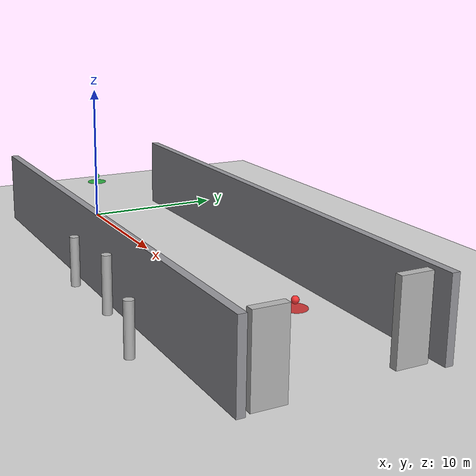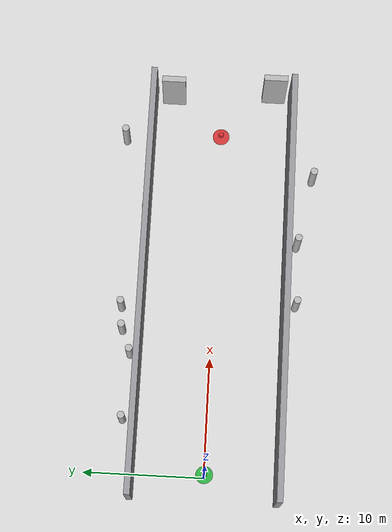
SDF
<sdf version="1.10">
 <world name="obstacle_avoidance">
  <physics type="ode">
   <max_step_size>0.0040000000000000001</max_step_size>
   <real_time_factor>1</real_time_factor>
   <real_time_update_rate>250</real_time_update_rate>
  </physics>
  <plugin name="gz::sim::systems::Physics" filename="gz-sim-physics-system"/>
  <plugin name="gz::sim::systems::UserCommands" filename="gz-sim-user-commands-system"/>
  <plugin name="gz::sim::systems::SceneBroadcaster" filename="gz-sim-scene-broadcaster-system"/>
  <plugin name="gz::sim::systems::Contact" filename="gz-sim-contact-system"/>
  <plugin name="gz::sim::systems::Imu" filename="gz-sim-imu-system"/>
  <plugin name="gz::sim::systems::AirPressure" filename="gz-sim-air-pressure-system"/>
  <plugin name="gz::sim::systems::AirSpeed" filename="gz-sim-air-speed-system"/>
  <plugin name="gz::sim::systems::ApplyLinkWrench" filename="gz-sim-apply-link-wrench-system"/>
  <plugin name="gz::sim::systems::NavSat" filename="gz-sim-navsat-system"/>
  <plugin name="gz::sim::systems::Magnetometer" filename="gz-sim-magnetometer-system"/>
  <plugin name="gz::sim::systems::Sensors" filename="gz-sim-sensors-system">
   <render_engine>ogre2</render_engine>
  </plugin>
  <plugin name="custom::OpticalFlowSystem" filename="libOpticalFlowSystem.so"/>
  <plugin name="custom::GstCameraSystem" filename="libGstCameraSystem.so"/>
  <gravity>0 0 -9.8000000000000007</gravity>
  <magnetic_field>6.0000000000000002e-06 2.3e-05 -4.1999999999999998e-05</magnetic_field>
  <atmosphere type="adiabatic"/>
  <scene>
   <grid>true</grid>
   <ambient>0.449999988 0.449999988 0.449999988 1</ambient>
   <background>0.74000001 0.769999981 0.819999993 1</background>
   <shadows>true</shadows>
  </scene>
  <spherical_coordinates>
   <surface_model>EARTH_WGS84</surface_model>
   <world_frame_orientation>ENU</world_frame_orientation>
   <latitude_deg>47.397971057728974</latitude_deg>
   <longitude_deg>8.5461637398001464</longitude_deg>
   <elevation>0</elevation>
   <heading_deg>0</heading_deg>
  </spherical_coordinates>
  <model name="ground_plane">
   <static>true</static>
   <link name="link">
    <collision name="collision">
     <geometry><plane><normal>0 0 1</normal><size>1 1</size></plane></geometry>
    </collision>
    <visual name="visual">
     <geometry><plane><normal>0 0 1</normal><size>120 120</size></plane></geometry>
     <material>
      <ambient>0.850000024 0.850000024 0.850000024 1</ambient>
      <diffuse>0.850000024 0.850000024 0.850000024 1</diffuse>
      <specular>0.400000006 0.400000006 0.400000006 1</specular>
     </material>
    </visual>
    <inertial>
     <mass>1</mass>
     <inertia><ixx>1</ixx><ixy>0</ixy><ixz>0</ixz><iyy>1</iyy><iyz>0</iyz><izz>1</izz></inertia>
    </inertial>
   </link>
  </model>
  <model name="lane_left_wall">
   <static>false</static>
   <pose>16.000350685277397 5.9726479455530503 2.5000071550429319 0.00013159811792528642 1.6293659742325944e-09 -0.0014502391489560568</pose>
   <link name="link">
    <collision name="collision"><geometry><box><size>36 0.5 5</size></box></geometry></collision>
    <visual name="visual">
     <geometry><box><size>36 0.5 5</size></box></geometry>
     <material>
      <ambient>0.5 0.5 0.519999981 1</ambient>
      <diffuse>0.600000024 0.600000024 0.620000005 1</diffuse>
     </material>
    </visual>
    <inertial>
     <mass>1</mass>
     <inertia><ixx>1</ixx><ixy>0</ixy><ixz>0</ixz><iyy>1</iyy><iyz>0</iyz><izz>1</izz></inertia>
    </inertial>
   </link>
  </model>
  <model name="lane_right_wall">
   <static>false</static>
   <pose>16.000034893159931 -6.0027765016829369 2.4999872571535362 3.7656652722942262e-08 1.1025071628537408e-12 -0.00015395044681306788</pose>
   <link name="link">
    <collision name="collision"><geometry><box><size>36 0.5 5</size></box></geometry></collision>
    <visual name="visual">
     <geometry><box><size>36 0.5 5</size></box></geometry>
     <material>
      <ambient>0.5 0.5 0.519999981 1</ambient>
      <diffuse>0.600000024 0.600000024 0.620000005 1</diffuse>
     </material>
    </visual>
    <inertial>
     <mass>1</mass>
     <inertia><ixx>1</ixx><ixy>0</ixy><ixz>0</ixz><iyy>1</iyy><iyz>0</iyz><izz>1</izz></inertia>
    </inertial>
   </link>
  </model>
  <model name="block_01">
   <static>false</static>
   <pose>4.4796299934387207 6.9769129753112793 1.5999992089195469 -3.4129033253894092e-17 2.0826223192293932e-16 1.7128980732863267e-18</pose>
   <link name="link">
    <collision name="collision">
     <geometry>
      <cylinder><radius>0.29999999999999999</radius><length>3.2000000000000002</length></cylinder>
     </geometry>
    </collision>
    <visual name="visual">
     <geometry>
      <cylinder><radius>0.29999999999999999</radius><length>3.2000000000000002</length></cylinder>
     </geometry>
    </visual>
    <inertial>
     <mass>1</mass>
     <inertia><ixx>1</ixx><ixy>0</ixy><ixz>0</ixz><iyy>1</iyy><iyz>0</iyz><izz>1</izz></inertia>
    </inertial>
   </link>
  </model>
  <model name="block_02">
   <static>false</static>
   <pose>10 6.691950798034668 1.5999992089195469 9.3753955047008215e-19 2.4068388300452732e-17 1.1006062327438353e-19</pose>
   <link name="link">
    <collision name="collision">
     <geometry>
      <cylinder><radius>0.29999999999999999</radius><length>3.2000000000000002</length></cylinder>
     </geometry>
    </collision>
    <visual name="visual">
     <geometry>
      <cylinder><radius>0.29999999999999999</radius><length>3.2000000000000002</length></cylinder>
     </geometry>
    </visual>
    <inertial>
     <mass>1</mass>
     <inertia><ixx>1</ixx><ixy>0</ixy><ixz>0</ixz><iyy>1</iyy><iyz>0</iyz><izz>1</izz></inertia>
    </inertial>
   </link>
  </model>
  <model name="block_03">
   <static>false</static>
   <pose>14 7.6509613990783691 1.5999992089195469 -5.7224000364468519e-18 6.9717609704587697e-16 2.1371617254475616e-18</pose>
   <link name="link">
    <collision name="collision">
     <geometry>
      <cylinder><radius>0.29999999999999999</radius><length>3.2000000000000002</length></cylinder>
     </geometry>
    </collision>
    <visual name="visual">
     <geometry>
      <cylinder><radius>0.29999999999999999</radius><length>3.2000000000000002</length></cylinder>
     </geometry>
    </visual>
    <inertial>
     <mass>1</mass>
     <inertia><ixx>1</ixx><ixy>0</ixy><ixz>0</ixz><iyy>1</iyy><iyz>0</iyz><izz>1</izz></inertia>
    </inertial>
   </link>
  </model>
  <model name="block_04">
   <static>false</static>
   <pose>14.750100135803223 -6.9767565727233887 1.5999992089195469 -1.986418425279222e-16 1.5427745075824404e-16 -2.2593311461309816e-19</pose>
   <link name="link">
    <collision name="collision">
     <geometry>
      <cylinder><radius>0.29999999999999999</radius><length>3.2000000000000002</length></cylinder>
     </geometry>
    </collision>
    <visual name="visual">
     <geometry>
      <cylinder><radius>0.29999999999999999</radius><length>3.2000000000000002</length></cylinder>
     </geometry>
    </visual>
    <inertial>
     <mass>1</mass>
     <inertia><ixx>1</ixx><ixy>0</ixy><ixz>0</ixz><iyy>1</iyy><iyz>0</iyz><izz>1</izz></inertia>
    </inertial>
   </link>
  </model>
  <model name="block_05">
   <static>false</static>
   <pose>22.237600930648853 6.0613506892762636 1.600000149859296 -6.52968830682026e-07 5.695882598897696e-10 1.6344363995861834e-06</pose>
   <link name="link">
    <collision name="collision">
     <geometry>
      <cylinder><radius>0.29999999999999999</radius><length>3.2000000000000002</length></cylinder>
     </geometry>
    </collision>
    <visual name="visual">
     <geometry>
      <cylinder><radius>0.29999999999999999</radius><length>3.2000000000000002</length></cylinder>
     </geometry>
    </visual>
    <inertial>
     <mass>1</mass>
     <inertia><ixx>1</ixx><ixy>0</ixy><ixz>0</ixz><iyy>1</iyy><iyz>0</iyz><izz>1</izz></inertia>
    </inertial>
   </link>
  </model>
  <model name="block_06">
   <static>false</static>
   <pose>26.024999618530273 -8.0206098556518555 1.5999998694917235 -9.531822592189839e-17 1.1494805065931402e-16 -1.9222684506365348e-18</pose>
   <link name="link">
    <collision name="collision">
     <geometry>
      <cylinder><radius>0.29999999999999999</radius><length>3.2000000000000002</length></cylinder>
     </geometry>
    </collision>
    <visual name="visual">
     <geometry>
      <cylinder><radius>0.29999999999999999</radius><length>3.2000000000000002</length></cylinder>
     </geometry>
    </visual>
    <inertial>
     <mass>1</mass>
     <inertia><ixx>1</ixx><ixy>0</ixy><ixz>0</ixz><iyy>1</iyy><iyz>0</iyz><izz>1</izz></inertia>
    </inertial>
   </link>
  </model>
  <model name="cyl_01">
   <static>false</static>
   <pose>12 7.4555902481079102 1.5999992089195469 1.7922751745646623e-17 2.1104140966654099e-18 -2.1862732116487971e-19</pose>
   <link name="link">
    <collision name="collision">
     <geometry>
      <cylinder><radius>0.29999999999999999</radius><length>3.2000000000000002</length></cylinder>
     </geometry>
    </collision>
    <visual name="visual">
     <geometry>
      <cylinder><radius>0.29999999999999999</radius><length>3.2000000000000002</length></cylinder>
     </geometry>
    </visual>
    <inertial>
     <mass>1</mass>
     <inertia><ixx>1</ixx><ixy>0</ixy><ixz>0</ixz><iyy>1</iyy><iyz>0</iyz><izz>1</izz></inertia>
    </inertial>
   </link>
  </model>
  <model name="cyl_02">
   <static>false</static>
   <pose>20 -6.8825201988220215 1.7999999525764545 -5.9956044407570622e-18 -7.2255734475861734e-18 9.0017156991867858e-20</pose>
   <link name="link">
    <collision name="collision">
     <geometry>
      <cylinder><radius>0.29999999999999999</radius><length>3.6000000000000001</length></cylinder>
     </geometry>
    </collision>
    <visual name="visual">
     <geometry>
      <cylinder><radius>0.29999999999999999</radius><length>3.6000000000000001</length></cylinder>
     </geometry>
    </visual>
    <inertial>
     <mass>1</mass>
     <inertia><ixx>1</ixx><ixy>0</ixy><ixz>0</ixz><iyy>1</iyy><iyz>0</iyz><izz>1</izz></inertia>
    </inertial>
   </link>
  </model>
  <model name="cyl_03">
   <static>false</static>
   <pose>29 8.1583166122436523 1.6999992089780487 -1.1693431182009026e-18 -3.9368016075562685e-18 1.8182324692950381e-19</pose>
   <link name="link">
    <collision name="collision">
     <geometry>
      <cylinder><radius>0.29999999999999999</radius><length>3.3999999999999999</length></cylinder>
     </geometry>
    </collision>
    <visual name="visual">
     <geometry>
      <cylinder><radius>0.29999999999999999</radius><length>3.3999999999999999</length></cylinder>
     </geometry>
    </visual>
    <inertial>
     <mass>1</mass>
     <inertia><ixx>1</ixx><ixy>0</ixy><ixz>0</ixz><iyy>1</iyy><iyz>0</iyz><izz>1</izz></inertia>
    </inertial>
   </link>
  </model>
  <model name="start_marker">
   <static>true</static>
   <pose>0.046363700181245804 0 2.7258865833282471 0 0 0</pose>
   <link name="link">
    <gravity>false</gravity>
    <kinematic>true</kinematic>
    <visual name="base_ring">
     <geometry>
      <cylinder><radius>0.69999999999999996</radius><length>0.040000000000000001</length></cylinder>
     </geometry>
     <material>
      <ambient>0.100000001 0.699999988 0.200000003 0.850000024</ambient>
      <diffuse>0.100000001 0.699999988 0.200000003 0.850000024</diffuse>
      <specular>0.200000003 0.200000003 0.200000003 1</specular>
     </material>
    </visual>
    <visual name="center_sphere">
     <pose>0 0 0.45000000000000001 0 0 0</pose>
     <geometry><sphere><radius>0.22</radius></sphere></geometry>
     <material>
      <ambient>0.100000001 0.850000024 0.25 1</ambient>
      <diffuse>0.100000001 0.850000024 0.25 1</diffuse>
      <specular>0.300000012 0.300000012 0.300000012 1</specular>
     </material>
    </visual>
    <inertial>
     <mass>1</mass>
     <inertia><ixx>1</ixx><ixy>0</ixy><ixz>0</ixz><iyy>1</iyy><iyz>0</iyz><izz>1</izz></inertia>
    </inertial>
   </link>
  </model>
  <model name="goal_marker">
   <static>true</static>
   <pose>28.969200134277344 0 2.378093957901001 0 0 0</pose>
   <link name="link">
    <gravity>false</gravity>
    <kinematic>true</kinematic>
    <visual name="base_ring">
     <geometry>
      <cylinder><radius>0.69999999999999996</radius><length>0.040000000000000001</length></cylinder>
     </geometry>
     <material>
      <ambient>0.850000024 0.150000006 0.150000006 0.850000024</ambient>
      <diffuse>0.850000024 0.150000006 0.150000006 0.850000024</diffuse>
      <specular>0.200000003 0.200000003 0.200000003 1</specular>
     </material>
    </visual>
    <visual name="center_sphere">
     <pose>0 0 0.45000000000000001 0 0 0</pose>
     <geometry><sphere><radius>0.22</radius></sphere></geometry>
     <material>
      <ambient>0.949999988 0.200000003 0.200000003 1</ambient>
      <diffuse>0.949999988 0.200000003 0.200000003 1</diffuse>
      <specular>0.300000012 0.300000012 0.300000012 1</specular>
     </material>
    </visual>
    <inertial>
     <mass>1</mass>
     <inertia><ixx>1</ixx><ixy>0</ixy><ixz>0</ixz><iyy>1</iyy><iyz>0</iyz><izz>1</izz></inertia>
    </inertial>
   </link>
  </model>
  <model name="goal_gate_left">
   <static>false</static>
   <pose>33 4.2348775863647461 2.4999999991915041 -4.9672860941994661e-20 -1.040579827904805e-20 4.639191721720037e-21</pose>
   <link name="link">
    <collision name="collision"><geometry><box><size>0.5 2 5</size></box></geometry></collision>
    <visual name="visual"><geometry><box><size>0.5 2 5</size></box></geometry></visual>
    <inertial>
     <mass>1</mass>
     <inertia><ixx>1</ixx><ixy>0</ixy><ixz>0</ixz><iyy>1</iyy><iyz>0</iyz><izz>1</izz></inertia>
    </inertial>
   </link>
  </model>
  <model name="goal_gate_right">
   <static>false</static>
   <pose>33.551300048220718 -4.4187892171584684 2.499999073184441 -1.0461011318624985e-07 3.2655675779829825e-12 -5.4295899468334141e-08</pose>
   <link name="link">
    <collision name="collision"><geometry><box><size>0.5 2 5</size></box></geometry></collision>
    <visual name="visual"><geometry><box><size>0.5 2 5</size></box></geometry></visual>
    <inertial>
     <mass>1</mass>
     <inertia><ixx>1</ixx><ixy>0</ixy><ixz>0</ixz><iyy>1</iyy><iyz>0</iyz><izz>1</izz></inertia>
    </inertial>
   </link>
  </model>
  <light name="sunUTC" type="directional">
   <pose>0 0 500 0 0 0</pose>
   <intensity>1</intensity>
   <direction>0.001 0.625 -0.78000000000000003</direction>
   <diffuse>0.899999976 0.899999976 0.899999976 1</diffuse>
   <specular>0.25 0.25 0.25 1</specular>
   <attenuation><range>2000</range><linear>0</linear><constant>1</constant><quadratic>0</quadratic></attenuation>
   <spot><inner_angle>0</inner_angle><outer_angle>0</outer_angle><falloff>0</falloff></spot>
  </light>
 </world>
</sdf>
